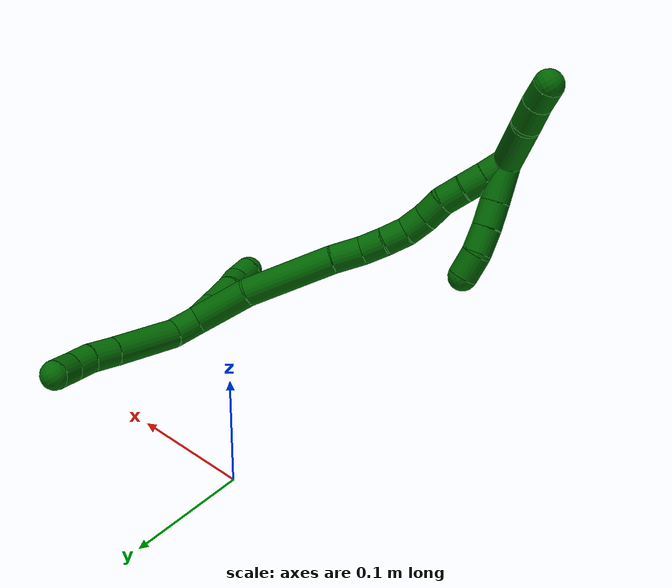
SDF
<sdf version="1.7">
 <world name="default">
  <model name="6">
   <static>0</static>
   <link name="6">
    <collision name="collision-cylinder-e_1_2_8">
     <pose>0.000901 0.008517 -0.009647 -2.41834 0.06988 -0.184291</pose>
     <geometry><cylinder><radius>0.0125</radius><length>0.025799</length></cylinder></geometry>
     <surface>
      <friction><ode><mu>1.16</mu><mu2>1.16</mu2><slip1>0</slip1><slip2>0</slip2></ode></friction>
      <contact><ode><kp>1e+06</kp><kd>1</kd><max_vel>0</max_vel><min_depth>0.001</min_depth></ode></contact>
     </surface>
    </collision>
    <visual name="visual-cylinder-e_1_2_8">
     <pose>0.000901 0.008517 -0.009647 -2.41834 0.06988 -0.184291</pose>
     <geometry><cylinder><radius>0.0125</radius><length>0.025799</length></cylinder></geometry>
     <material><ambient>0 0.392157 0.003922 1</ambient></material>
    </visual>
    <collision name="collision-cylinder-e_2_8_9">
     <pose>0.009356 0.039207 -0.0373 -2.25285 0.258569 -0.533111</pose>
     <geometry><cylinder><radius>0.0125</radius><length>0.059093</length></cylinder></geometry>
     <surface>
      <friction><ode><mu>1.16</mu><mu2>1.16</mu2><slip1>0</slip1><slip2>0</slip2></ode></friction>
      <contact><ode><kp>1e+06</kp><kd>1</kd><max_vel>0</max_vel><min_depth>0.001</min_depth></ode></contact>
     </surface>
    </collision>
    <visual name="visual-cylinder-e_2_8_9">
     <pose>0.009356 0.039207 -0.0373 -2.25285 0.258569 -0.533111</pose>
     <geometry><cylinder><radius>0.0125</radius><length>0.059093</length></cylinder></geometry>
     <material><ambient>0 0.392157 0.003922 1</ambient></material>
    </visual>
    <collision name="collision-cylinder-e_3_9_10">
     <pose>0.020193 0.070194 -0.062357 -2.24553 0.282952 -0.576186</pose>
     <geometry><cylinder><radius>0.0125</radius><length>0.023507</length></cylinder></geometry>
     <surface>
      <friction><ode><mu>1.16</mu><mu2>1.16</mu2><slip1>0</slip1><slip2>0</slip2></ode></friction>
      <contact><ode><kp>1e+06</kp><kd>1</kd><max_vel>0</max_vel><min_depth>0.001</min_depth></ode></contact>
     </surface>
    </collision>
    <visual name="visual-cylinder-e_3_9_10">
     <pose>0.020193 0.070194 -0.062357 -2.24553 0.282952 -0.576186</pose>
     <geometry><cylinder><radius>0.0125</radius><length>0.023507</length></cylinder></geometry>
     <material><ambient>0 0.392157 0.003922 1</ambient></material>
    </visual>
    <collision name="collision-cylinder-e_4_10_11">
     <pose>0.024627 0.087351 -0.074887 -2.15188 0.114982 -0.212504</pose>
     <geometry><cylinder><radius>0.0125</radius><length>0.020098</length></cylinder></geometry>
     <surface>
      <friction><ode><mu>1.16</mu><mu2>1.16</mu2><slip1>0</slip1><slip2>0</slip2></ode></friction>
      <contact><ode><kp>1e+06</kp><kd>1</kd><max_vel>0</max_vel><min_depth>0.001</min_depth></ode></contact>
     </surface>
    </collision>
    <visual name="visual-cylinder-e_4_10_11">
     <pose>0.024627 0.087351 -0.074887 -2.15188 0.114982 -0.212504</pose>
     <geometry><cylinder><radius>0.0125</radius><length>0.020098</length></cylinder></geometry>
     <material><ambient>0 0.392157 0.003922 1</ambient></material>
    </visual>
    <collision name="collision-cylinder-e_5_11_6">
     <pose>0.027122 0.10595 -0.083304 -1.84977 0.125163 -0.165885</pose>
     <geometry><cylinder><radius>0.0125</radius><length>0.021503</length></cylinder></geometry>
     <surface>
      <friction><ode><mu>1.16</mu><mu2>1.16</mu2><slip1>0</slip1><slip2>0</slip2></ode></friction>
      <contact><ode><kp>1e+06</kp><kd>1</kd><max_vel>0</max_vel><min_depth>0.001</min_depth></ode></contact>
     </surface>
    </collision>
    <visual name="visual-cylinder-e_5_11_6">
     <pose>0.027122 0.10595 -0.083304 -1.84977 0.125163 -0.165885</pose>
     <geometry><cylinder><radius>0.0125</radius><length>0.021503</length></cylinder></geometry>
     <material><ambient>0 0.392157 0.003922 1</ambient></material>
    </visual>
    <collision name="collision-cylinder-e_1_2_12">
     <pose>0.00107 -0.011231 0.00469 1.17523 0.087654 0.058408</pose>
     <geometry><cylinder><radius>0.0125</radius><length>0.024436</length></cylinder></geometry>
     <surface>
      <friction><ode><mu>1.16</mu><mu2>1.16</mu2><slip1>0</slip1><slip2>0</slip2></ode></friction>
      <contact><ode><kp>1e+06</kp><kd>1</kd><max_vel>0</max_vel><min_depth>0.001</min_depth></ode></contact>
     </surface>
    </collision>
    <visual name="visual-cylinder-e_1_2_12">
     <pose>0.00107 -0.011231 0.00469 1.17523 0.087654 0.058408</pose>
     <geometry><cylinder><radius>0.0125</radius><length>0.024436</length></cylinder></geometry>
     <material><ambient>0 0.392157 0.003922 1</ambient></material>
    </visual>
    <collision name="collision-cylinder-e_2_12_13">
     <pose>0.003779 -0.038379 0.015933 1.18022 0.095004 0.063652</pose>
     <geometry><cylinder><radius>0.0125</radius><length>0.034582</length></cylinder></geometry>
     <surface>
      <friction><ode><mu>1.16</mu><mu2>1.16</mu2><slip1>0</slip1><slip2>0</slip2></ode></friction>
      <contact><ode><kp>1e+06</kp><kd>1</kd><max_vel>0</max_vel><min_depth>0.001</min_depth></ode></contact>
     </surface>
    </collision>
    <visual name="visual-cylinder-e_2_12_13">
     <pose>0.003779 -0.038379 0.015933 1.18022 0.095004 0.063652</pose>
     <geometry><cylinder><radius>0.0125</radius><length>0.034582</length></cylinder></geometry>
     <material><ambient>0 0.392157 0.003922 1</ambient></material>
    </visual>
    <collision name="collision-cylinder-e_3_13_14">
     <pose>0.006563 -0.064226 0.023962 1.42327 0.113371 0.097796</pose>
     <geometry><cylinder><radius>0.0125</radius><length>0.020208</length></cylinder></geometry>
     <surface>
      <friction><ode><mu>1.16</mu><mu2>1.16</mu2><slip1>0</slip1><slip2>0</slip2></ode></friction>
      <contact><ode><kp>1e+06</kp><kd>1</kd><max_vel>0</max_vel><min_depth>0.001</min_depth></ode></contact>
     </surface>
    </collision>
    <visual name="visual-cylinder-e_3_13_14">
     <pose>0.006563 -0.064226 0.023962 1.42327 0.113371 0.097796</pose>
     <geometry><cylinder><radius>0.0125</radius><length>0.020208</length></cylinder></geometry>
     <material><ambient>0 0.392157 0.003922 1</ambient></material>
    </visual>
    <collision name="collision-cylinder-e_4_14_5">
     <pose>0.00837 -0.083293 0.030333 1.07895 0.063977 0.038313</pose>
     <geometry><cylinder><radius>0.0125</radius><length>0.020774</length></cylinder></geometry>
     <surface>
      <friction><ode><mu>1.16</mu><mu2>1.16</mu2><slip1>0</slip1><slip2>0</slip2></ode></friction>
      <contact><ode><kp>1e+06</kp><kd>1</kd><max_vel>0</max_vel><min_depth>0.001</min_depth></ode></contact>
     </surface>
    </collision>
    <visual name="visual-cylinder-e_4_14_5">
     <pose>0.00837 -0.083293 0.030333 1.07895 0.063977 0.038313</pose>
     <geometry><cylinder><radius>0.0125</radius><length>0.020774</length></cylinder></geometry>
     <material><ambient>0 0.392157 0.003922 1</ambient></material>
    </visual>
    <collision name="collision-cylinder-e_1_2_15">
     <pose>-0.000337 0.000831 0.02624 -0.031644 -0.01283 0.000203</pose>
     <geometry><cylinder><radius>0.0125</radius><length>0.05251</length></cylinder></geometry>
     <surface>
      <friction><ode><mu>1.16</mu><mu2>1.16</mu2><slip1>0</slip1><slip2>0</slip2></ode></friction>
      <contact><ode><kp>1e+06</kp><kd>1</kd><max_vel>0</max_vel><min_depth>0.001</min_depth></ode></contact>
     </surface>
    </collision>
    <visual name="visual-cylinder-e_1_2_15">
     <pose>-0.000337 0.000831 0.02624 -0.031644 -0.01283 0.000203</pose>
     <geometry><cylinder><radius>0.0125</radius><length>0.05251</length></cylinder></geometry>
     <material><ambient>0 0.392157 0.003922 1</ambient></material>
    </visual>
    <collision name="collision-cylinder-e_2_15_16">
     <pose>-0.006866 -0.001015 0.09162 0.068255 -0.156536 -0.005355</pose>
     <geometry><cylinder><radius>0.0125</radius><length>0.079435</length></cylinder></geometry>
     <surface>
      <friction><ode><mu>1.16</mu><mu2>1.16</mu2><slip1>0</slip1><slip2>0</slip2></ode></friction>
      <contact><ode><kp>1e+06</kp><kd>1</kd><max_vel>0</max_vel><min_depth>0.001</min_depth></ode></contact>
     </surface>
    </collision>
    <visual name="visual-cylinder-e_2_15_16">
     <pose>-0.006866 -0.001015 0.09162 0.068255 -0.156536 -0.005355</pose>
     <geometry><cylinder><radius>0.0125</radius><length>0.079435</length></cylinder></geometry>
     <material><ambient>0 0.392157 0.003922 1</ambient></material>
    </visual>
    <collision name="collision-cylinder-e_3_16_17">
     <pose>-0.016212 -0.005289 0.143577 0.124094 -0.239537 -0.014953</pose>
     <geometry><cylinder><radius>0.0125</radius><length>0.026591</length></cylinder></geometry>
     <surface>
      <friction><ode><mu>1.16</mu><mu2>1.16</mu2><slip1>0</slip1><slip2>0</slip2></ode></friction>
      <contact><ode><kp>1e+06</kp><kd>1</kd><max_vel>0</max_vel><min_depth>0.001</min_depth></ode></contact>
     </surface>
    </collision>
    <visual name="visual-cylinder-e_3_16_17">
     <pose>-0.016212 -0.005289 0.143577 0.124094 -0.239537 -0.014953</pose>
     <geometry><cylinder><radius>0.0125</radius><length>0.026591</length></cylinder></geometry>
     <material><ambient>0 0.392157 0.003922 1</ambient></material>
    </visual>
    <collision name="collision-cylinder-e_4_17_18">
     <pose>-0.020733 -0.006804 0.166471 -0.008273 -0.134774 0.000558</pose>
     <geometry><cylinder><radius>0.0125</radius><length>0.020341</length></cylinder></geometry>
     <surface>
      <friction><ode><mu>1.16</mu><mu2>1.16</mu2><slip1>0</slip1><slip2>0</slip2></ode></friction>
      <contact><ode><kp>1e+06</kp><kd>1</kd><max_vel>0</max_vel><min_depth>0.001</min_depth></ode></contact>
     </surface>
    </collision>
    <visual name="visual-cylinder-e_4_17_18">
     <pose>-0.020733 -0.006804 0.166471 -0.008273 -0.134774 0.000558</pose>
     <geometry><cylinder><radius>0.0125</radius><length>0.020341</length></cylinder></geometry>
     <material><ambient>0 0.392157 0.003922 1</ambient></material>
    </visual>
    <collision name="collision-cylinder-e_5_18_19">
     <pose>-0.023049 -0.007902 0.186471 0.118453 -0.094799 -0.005625</pose>
     <geometry><cylinder><radius>0.0125</radius><length>0.020075</length></cylinder></geometry>
     <surface>
      <friction><ode><mu>1.16</mu><mu2>1.16</mu2><slip1>0</slip1><slip2>0</slip2></ode></friction>
      <contact><ode><kp>1e+06</kp><kd>1</kd><max_vel>0</max_vel><min_depth>0.001</min_depth></ode></contact>
     </surface>
    </collision>
    <visual name="visual-cylinder-e_5_18_19">
     <pose>-0.023049 -0.007902 0.186471 0.118453 -0.094799 -0.005625</pose>
     <geometry><cylinder><radius>0.0125</radius><length>0.020075</length></cylinder></geometry>
     <material><ambient>0 0.392157 0.003922 1</ambient></material>
    </visual>
    <collision name="collision-cylinder-e_6_19_20">
     <pose>-0.022856 -0.009392 0.206332 0.031129 0.114492 0.001784</pose>
     <geometry><cylinder><radius>0.0125</radius><length>0.020017</length></cylinder></geometry>
     <surface>
      <friction><ode><mu>1.16</mu><mu2>1.16</mu2><slip1>0</slip1><slip2>0</slip2></ode></friction>
      <contact><ode><kp>1e+06</kp><kd>1</kd><max_vel>0</max_vel><min_depth>0.001</min_depth></ode></contact>
     </surface>
    </collision>
    <visual name="visual-cylinder-e_6_19_20">
     <pose>-0.022856 -0.009392 0.206332 0.031129 0.114492 0.001784</pose>
     <geometry><cylinder><radius>0.0125</radius><length>0.020017</length></cylinder></geometry>
     <material><ambient>0 0.392157 0.003922 1</ambient></material>
    </visual>
    <collision name="collision-cylinder-e_7_20_21">
     <pose>-0.019198 -0.008586 0.226076 -0.113253 0.24953 -0.014219</pose>
     <geometry><cylinder><radius>0.0125</radius><length>0.02037</length></cylinder></geometry>
     <surface>
      <friction><ode><mu>1.16</mu><mu2>1.16</mu2><slip1>0</slip1><slip2>0</slip2></ode></friction>
      <contact><ode><kp>1e+06</kp><kd>1</kd><max_vel>0</max_vel><min_depth>0.001</min_depth></ode></contact>
     </surface>
    </collision>
    <visual name="visual-cylinder-e_7_20_21">
     <pose>-0.019198 -0.008586 0.226076 -0.113253 0.24953 -0.014219</pose>
     <geometry><cylinder><radius>0.0125</radius><length>0.02037</length></cylinder></geometry>
     <material><ambient>0 0.392157 0.003922 1</ambient></material>
    </visual>
    <collision name="collision-cylinder-e_8_21_22">
     <pose>-0.016526 -0.007111 0.246037 -0.03541 0.015367 -0.000272</pose>
     <geometry><cylinder><radius>0.0125</radius><length>0.020323</length></cylinder></geometry>
     <surface>
      <friction><ode><mu>1.16</mu><mu2>1.16</mu2><slip1>0</slip1><slip2>0</slip2></ode></friction>
      <contact><ode><kp>1e+06</kp><kd>1</kd><max_vel>0</max_vel><min_depth>0.001</min_depth></ode></contact>
     </surface>
    </collision>
    <visual name="visual-cylinder-e_8_21_22">
     <pose>-0.016526 -0.007111 0.246037 -0.03541 0.015367 -0.000272</pose>
     <geometry><cylinder><radius>0.0125</radius><length>0.020323</length></cylinder></geometry>
     <material><ambient>0 0.392157 0.003922 1</ambient></material>
    </visual>
    <collision name="collision-cylinder-e_9_22_23">
     <pose>-0.016361 -0.007405 0.266295 0.064567 0.000933 3e-05</pose>
     <geometry><cylinder><radius>0.0125</radius><length>0.02025</length></cylinder></geometry>
     <surface>
      <friction><ode><mu>1.16</mu><mu2>1.16</mu2><slip1>0</slip1><slip2>0</slip2></ode></friction>
      <contact><ode><kp>1e+06</kp><kd>1</kd><max_vel>0</max_vel><min_depth>0.001</min_depth></ode></contact>
     </surface>
    </collision>
    <visual name="visual-cylinder-e_9_22_23">
     <pose>-0.016361 -0.007405 0.266295 0.064567 0.000933 3e-05</pose>
     <geometry><cylinder><radius>0.0125</radius><length>0.02025</length></cylinder></geometry>
     <material><ambient>0 0.392157 0.003922 1</ambient></material>
    </visual>
    <collision name="collision-cylinder-e_10_23_1">
     <pose>-0.016058 -0.008829 0.286409 0.076912 0.029179 0.001123</pose>
     <geometry><cylinder><radius>0.0125</radius><length>0.020088</length></cylinder></geometry>
     <surface>
      <friction><ode><mu>1.16</mu><mu2>1.16</mu2><slip1>0</slip1><slip2>0</slip2></ode></friction>
      <contact><ode><kp>1e+06</kp><kd>1</kd><max_vel>0</max_vel><min_depth>0.001</min_depth></ode></contact>
     </surface>
    </collision>
    <visual name="visual-cylinder-e_10_23_1">
     <pose>-0.016058 -0.008829 0.286409 0.076912 0.029179 0.001123</pose>
     <geometry><cylinder><radius>0.0125</radius><length>0.020088</length></cylinder></geometry>
     <material><ambient>0 0.392157 0.003922 1</ambient></material>
    </visual>
    <collision name="collision-cylinder-e_1_1_24">
     <pose>-0.004721 0.010727 0.312357 -0.905861 0.404048 -0.198703</pose>
     <geometry><cylinder><radius>0.0125</radius><length>0.056185</length></cylinder></geometry>
     <surface>
      <friction><ode><mu>1.16</mu><mu2>1.16</mu2><slip1>0</slip1><slip2>0</slip2></ode></friction>
      <contact><ode><kp>1e+06</kp><kd>1</kd><max_vel>0</max_vel><min_depth>0.001</min_depth></ode></contact>
     </surface>
    </collision>
    <visual name="visual-cylinder-e_1_1_24">
     <pose>-0.004721 0.010727 0.312357 -0.905861 0.404048 -0.198703</pose>
     <geometry><cylinder><radius>0.0125</radius><length>0.056185</length></cylinder></geometry>
     <material><ambient>0 0.392157 0.003922 1</ambient></material>
    </visual>
    <collision name="collision-cylinder-e_2_24_25">
     <pose>0.012025 0.037367 0.336586 -0.65068 0.50063 -0.172068</pose>
     <geometry><cylinder><radius>0.0125</radius><length>0.023758</length></cylinder></geometry>
     <surface>
      <friction><ode><mu>1.16</mu><mu2>1.16</mu2><slip1>0</slip1><slip2>0</slip2></ode></friction>
      <contact><ode><kp>1e+06</kp><kd>1</kd><max_vel>0</max_vel><min_depth>0.001</min_depth></ode></contact>
     </surface>
    </collision>
    <visual name="visual-cylinder-e_2_24_25">
     <pose>0.012025 0.037367 0.336586 -0.65068 0.50063 -0.172068</pose>
     <geometry><cylinder><radius>0.0125</radius><length>0.023758</length></cylinder></geometry>
     <material><ambient>0 0.392157 0.003922 1</ambient></material>
    </visual>
    <collision name="collision-cylinder-e_3_25_4">
     <pose>0.021831 0.049397 0.352022 -0.674997 0.421574 -0.14989</pose>
     <geometry><cylinder><radius>0.0125</radius><length>0.020057</length></cylinder></geometry>
     <surface>
      <friction><ode><mu>1.16</mu><mu2>1.16</mu2><slip1>0</slip1><slip2>0</slip2></ode></friction>
      <contact><ode><kp>1e+06</kp><kd>1</kd><max_vel>0</max_vel><min_depth>0.001</min_depth></ode></contact>
     </surface>
    </collision>
    <visual name="visual-cylinder-e_3_25_4">
     <pose>0.021831 0.049397 0.352022 -0.674997 0.421574 -0.14989</pose>
     <geometry><cylinder><radius>0.0125</radius><length>0.020057</length></cylinder></geometry>
     <material><ambient>0 0.392157 0.003922 1</ambient></material>
    </visual>
    <collision name="collision-cylinder-e_1_1_26">
     <pose>-0.027079 -0.005291 0.284719 -2.78867 -0.736864 2.27619</pose>
     <geometry><cylinder><radius>0.0125</radius><length>0.033673</length></cylinder></geometry>
     <surface>
      <friction><ode><mu>1.16</mu><mu2>1.16</mu2><slip1>0</slip1><slip2>0</slip2></ode></friction>
      <contact><ode><kp>1e+06</kp><kd>1</kd><max_vel>0</max_vel><min_depth>0.001</min_depth></ode></contact>
     </surface>
    </collision>
    <visual name="visual-cylinder-e_1_1_26">
     <pose>-0.027079 -0.005291 0.284719 -2.78867 -0.736864 2.27619</pose>
     <geometry><cylinder><radius>0.0125</radius><length>0.033673</length></cylinder></geometry>
     <material><ambient>0 0.392157 0.003922 1</ambient></material>
    </visual>
    <collision name="collision-cylinder-e_2_26_27">
     <pose>-0.045529 0.00213 0.265284 -2.75915 -0.707991 2.17653</pose>
     <geometry><cylinder><radius>0.0125</radius><length>0.021948</length></cylinder></geometry>
     <surface>
      <friction><ode><mu>1.16</mu><mu2>1.16</mu2><slip1>0</slip1><slip2>0</slip2></ode></friction>
      <contact><ode><kp>1e+06</kp><kd>1</kd><max_vel>0</max_vel><min_depth>0.001</min_depth></ode></contact>
     </surface>
    </collision>
    <visual name="visual-cylinder-e_2_26_27">
     <pose>-0.045529 0.00213 0.265284 -2.75915 -0.707991 2.17653</pose>
     <geometry><cylinder><radius>0.0125</radius><length>0.021948</length></cylinder></geometry>
     <material><ambient>0 0.392157 0.003922 1</ambient></material>
    </visual>
    <collision name="collision-cylinder-e_3_27_28">
     <pose>-0.059376 0.008207 0.249145 -2.80231 -0.645336 2.19472</pose>
     <geometry><cylinder><radius>0.0125</radius><length>0.022313</length></cylinder></geometry>
     <surface>
      <friction><ode><mu>1.16</mu><mu2>1.16</mu2><slip1>0</slip1><slip2>0</slip2></ode></friction>
      <contact><ode><kp>1e+06</kp><kd>1</kd><max_vel>0</max_vel><min_depth>0.001</min_depth></ode></contact>
     </surface>
    </collision>
    <visual name="visual-cylinder-e_3_27_28">
     <pose>-0.059376 0.008207 0.249145 -2.80231 -0.645336 2.19472</pose>
     <geometry><cylinder><radius>0.0125</radius><length>0.022313</length></cylinder></geometry>
     <material><ambient>0 0.392157 0.003922 1</ambient></material>
    </visual>
    <collision name="collision-cylinder-e_4_28_3">
     <pose>-0.071565 0.01143 0.231167 -3.1148 -0.519664 3.04088</pose>
     <geometry><cylinder><radius>0.0125</radius><length>0.022066</length></cylinder></geometry>
     <surface>
      <friction><ode><mu>1.16</mu><mu2>1.16</mu2><slip1>0</slip1><slip2>0</slip2></ode></friction>
      <contact><ode><kp>1e+06</kp><kd>1</kd><max_vel>0</max_vel><min_depth>0.001</min_depth></ode></contact>
     </surface>
    </collision>
    <visual name="visual-cylinder-e_4_28_3">
     <pose>-0.071565 0.01143 0.231167 -3.1148 -0.519664 3.04088</pose>
     <geometry><cylinder><radius>0.0125</radius><length>0.022066</length></cylinder></geometry>
     <material><ambient>0 0.392157 0.003922 1</ambient></material>
    </visual>
    <collision name="collision-sphere-3">
     <pose>-0.077044 0.011687 0.221594 0 -0 0</pose>
     <geometry><sphere><radius>0.0125</radius></sphere></geometry>
     <surface>
      <friction><ode><mu>1.16</mu><mu2>1.16</mu2><slip1>0</slip1><slip2>0</slip2></ode></friction>
      <contact><ode><kp>1e+06</kp><kd>1</kd><max_vel>0</max_vel><min_depth>0.001</min_depth></ode></contact>
     </surface>
    </collision>
    <visual name="visual-sphere-3">
     <pose>-0.077044 0.011687 0.221594 0 -0 0</pose>
     <geometry><sphere><radius>0.0125</radius></sphere></geometry>
     <material><ambient>0 0.392157 0.003922 1</ambient></material>
    </visual>
    <collision name="collision-sphere-28">
     <pose>-0.066086 0.011174 0.24074 0 -0 0</pose>
     <geometry><sphere><radius>0.0125</radius></sphere></geometry>
     <surface>
      <friction><ode><mu>1.16</mu><mu2>1.16</mu2><slip1>0</slip1><slip2>0</slip2></ode></friction>
      <contact><ode><kp>1e+06</kp><kd>1</kd><max_vel>0</max_vel><min_depth>0.001</min_depth></ode></contact>
     </surface>
    </collision>
    <visual name="visual-sphere-28">
     <pose>-0.066086 0.011174 0.24074 0 -0 0</pose>
     <geometry><sphere><radius>0.0125</radius></sphere></geometry>
     <material><ambient>0 0.392157 0.003922 1</ambient></material>
    </visual>
    <collision name="collision-sphere-27">
     <pose>-0.052665 0.005241 0.25755 0 -0 0</pose>
     <geometry><sphere><radius>0.0125</radius></sphere></geometry>
     <surface>
      <friction><ode><mu>1.16</mu><mu2>1.16</mu2><slip1>0</slip1><slip2>0</slip2></ode></friction>
      <contact><ode><kp>1e+06</kp><kd>1</kd><max_vel>0</max_vel><min_depth>0.001</min_depth></ode></contact>
     </surface>
    </collision>
    <visual name="visual-sphere-27">
     <pose>-0.052665 0.005241 0.25755 0 -0 0</pose>
     <geometry><sphere><radius>0.0125</radius></sphere></geometry>
     <material><ambient>0 0.392157 0.003922 1</ambient></material>
    </visual>
    <collision name="collision-sphere-26">
     <pose>-0.038392 -0.000981 0.273019 0 -0 0</pose>
     <geometry><sphere><radius>0.0125</radius></sphere></geometry>
     <surface>
      <friction><ode><mu>1.16</mu><mu2>1.16</mu2><slip1>0</slip1><slip2>0</slip2></ode></friction>
      <contact><ode><kp>1e+06</kp><kd>1</kd><max_vel>0</max_vel><min_depth>0.001</min_depth></ode></contact>
     </surface>
    </collision>
    <visual name="visual-sphere-26">
     <pose>-0.038392 -0.000981 0.273019 0 -0 0</pose>
     <geometry><sphere><radius>0.0125</radius></sphere></geometry>
     <material><ambient>0 0.392157 0.003922 1</ambient></material>
    </visual>
    <collision name="collision-sphere-4">
     <pose>0.025934 0.055115 0.359166 0 -0 0</pose>
     <geometry><sphere><radius>0.0125</radius></sphere></geometry>
     <surface>
      <friction><ode><mu>1.16</mu><mu2>1.16</mu2><slip1>0</slip1><slip2>0</slip2></ode></friction>
      <contact><ode><kp>1e+06</kp><kd>1</kd><max_vel>0</max_vel><min_depth>0.001</min_depth></ode></contact>
     </surface>
    </collision>
    <visual name="visual-sphere-4">
     <pose>0.025934 0.055115 0.359166 0 -0 0</pose>
     <geometry><sphere><radius>0.0125</radius></sphere></geometry>
     <material><ambient>0 0.392157 0.003922 1</ambient></material>
    </visual>
    <collision name="collision-sphere-25">
     <pose>0.017727 0.043679 0.344878 0 -0 0</pose>
     <geometry><sphere><radius>0.0125</radius></sphere></geometry>
     <surface>
      <friction><ode><mu>1.16</mu><mu2>1.16</mu2><slip1>0</slip1><slip2>0</slip2></ode></friction>
      <contact><ode><kp>1e+06</kp><kd>1</kd><max_vel>0</max_vel><min_depth>0.001</min_depth></ode></contact>
     </surface>
    </collision>
    <visual name="visual-sphere-25">
     <pose>0.017727 0.043679 0.344878 0 -0 0</pose>
     <geometry><sphere><radius>0.0125</radius></sphere></geometry>
     <material><ambient>0 0.392157 0.003922 1</ambient></material>
    </visual>
    <collision name="collision-sphere-24">
     <pose>0.006324 0.031054 0.328294 0 -0 0</pose>
     <geometry><sphere><radius>0.0125</radius></sphere></geometry>
     <surface>
      <friction><ode><mu>1.16</mu><mu2>1.16</mu2><slip1>0</slip1><slip2>0</slip2></ode></friction>
      <contact><ode><kp>1e+06</kp><kd>1</kd><max_vel>0</max_vel><min_depth>0.001</min_depth></ode></contact>
     </surface>
    </collision>
    <visual name="visual-sphere-24">
     <pose>0.006324 0.031054 0.328294 0 -0 0</pose>
     <geometry><sphere><radius>0.0125</radius></sphere></geometry>
     <material><ambient>0 0.392157 0.003922 1</ambient></material>
    </visual>
    <collision name="collision-sphere-1">
     <pose>-0.015765 -0.009601 0.296419 0 -0 0</pose>
     <geometry><sphere><radius>0.0125</radius></sphere></geometry>
     <surface>
      <friction><ode><mu>1.16</mu><mu2>1.16</mu2><slip1>0</slip1><slip2>0</slip2></ode></friction>
      <contact><ode><kp>1e+06</kp><kd>1</kd><max_vel>0</max_vel><min_depth>0.001</min_depth></ode></contact>
     </surface>
    </collision>
    <visual name="visual-sphere-1">
     <pose>-0.015765 -0.009601 0.296419 0 -0 0</pose>
     <geometry><sphere><radius>0.0125</radius></sphere></geometry>
     <material><ambient>0 0.392157 0.003922 1</ambient></material>
    </visual>
    <collision name="collision-sphere-23">
     <pose>-0.016351 -0.008058 0.276399 0 -0 0</pose>
     <geometry><sphere><radius>0.0125</radius></sphere></geometry>
     <surface>
      <friction><ode><mu>1.16</mu><mu2>1.16</mu2><slip1>0</slip1><slip2>0</slip2></ode></friction>
      <contact><ode><kp>1e+06</kp><kd>1</kd><max_vel>0</max_vel><min_depth>0.001</min_depth></ode></contact>
     </surface>
    </collision>
    <visual name="visual-sphere-23">
     <pose>-0.016351 -0.008058 0.276399 0 -0 0</pose>
     <geometry><sphere><radius>0.0125</radius></sphere></geometry>
     <material><ambient>0 0.392157 0.003922 1</ambient></material>
    </visual>
    <collision name="collision-sphere-22">
     <pose>-0.01637 -0.006751 0.256191 0 -0 0</pose>
     <geometry><sphere><radius>0.0125</radius></sphere></geometry>
     <surface>
      <friction><ode><mu>1.16</mu><mu2>1.16</mu2><slip1>0</slip1><slip2>0</slip2></ode></friction>
      <contact><ode><kp>1e+06</kp><kd>1</kd><max_vel>0</max_vel><min_depth>0.001</min_depth></ode></contact>
     </surface>
    </collision>
    <visual name="visual-sphere-22">
     <pose>-0.01637 -0.006751 0.256191 0 -0 0</pose>
     <geometry><sphere><radius>0.0125</radius></sphere></geometry>
     <material><ambient>0 0.392157 0.003922 1</ambient></material>
    </visual>
    <collision name="collision-sphere-21">
     <pose>-0.016682 -0.007471 0.235883 0 -0 0</pose>
     <geometry><sphere><radius>0.0125</radius></sphere></geometry>
     <surface>
      <friction><ode><mu>1.16</mu><mu2>1.16</mu2><slip1>0</slip1><slip2>0</slip2></ode></friction>
      <contact><ode><kp>1e+06</kp><kd>1</kd><max_vel>0</max_vel><min_depth>0.001</min_depth></ode></contact>
     </surface>
    </collision>
    <visual name="visual-sphere-21">
     <pose>-0.016682 -0.007471 0.235883 0 -0 0</pose>
     <geometry><sphere><radius>0.0125</radius></sphere></geometry>
     <material><ambient>0 0.392157 0.003922 1</ambient></material>
    </visual>
    <collision name="collision-sphere-6">
     <pose>0.028464 0.116205 -0.086242 0 -0 0</pose>
     <geometry><sphere><radius>0.0125</radius></sphere></geometry>
     <surface>
      <friction><ode><mu>1.16</mu><mu2>1.16</mu2><slip1>0</slip1><slip2>0</slip2></ode></friction>
      <contact><ode><kp>1e+06</kp><kd>1</kd><max_vel>0</max_vel><min_depth>0.001</min_depth></ode></contact>
     </surface>
    </collision>
    <visual name="visual-sphere-6">
     <pose>0.028464 0.116205 -0.086242 0 -0 0</pose>
     <geometry><sphere><radius>0.0125</radius></sphere></geometry>
     <material><ambient>0 0.392157 0.003922 1</ambient></material>
    </visual>
    <collision name="collision-sphere-11">
     <pose>0.02578 0.095695 -0.080367 0 -0 0</pose>
     <geometry><sphere><radius>0.0125</radius></sphere></geometry>
     <surface>
      <friction><ode><mu>1.16</mu><mu2>1.16</mu2><slip1>0</slip1><slip2>0</slip2></ode></friction>
      <contact><ode><kp>1e+06</kp><kd>1</kd><max_vel>0</max_vel><min_depth>0.001</min_depth></ode></contact>
     </surface>
    </collision>
    <visual name="visual-sphere-11">
     <pose>0.02578 0.095695 -0.080367 0 -0 0</pose>
     <geometry><sphere><radius>0.0125</radius></sphere></geometry>
     <material><ambient>0 0.392157 0.003922 1</ambient></material>
    </visual>
    <collision name="collision-sphere-10">
     <pose>0.023474 0.079007 -0.069407 0 -0 0</pose>
     <geometry><sphere><radius>0.0125</radius></sphere></geometry>
     <surface>
      <friction><ode><mu>1.16</mu><mu2>1.16</mu2><slip1>0</slip1><slip2>0</slip2></ode></friction>
      <contact><ode><kp>1e+06</kp><kd>1</kd><max_vel>0</max_vel><min_depth>0.001</min_depth></ode></contact>
     </surface>
    </collision>
    <visual name="visual-sphere-10">
     <pose>0.023474 0.079007 -0.069407 0 -0 0</pose>
     <geometry><sphere><radius>0.0125</radius></sphere></geometry>
     <material><ambient>0 0.392157 0.003922 1</ambient></material>
    </visual>
    <collision name="collision-sphere-9">
     <pose>0.016911 0.061381 -0.055306 0 -0 0</pose>
     <geometry><sphere><radius>0.0125</radius></sphere></geometry>
     <surface>
      <friction><ode><mu>1.16</mu><mu2>1.16</mu2><slip1>0</slip1><slip2>0</slip2></ode></friction>
      <contact><ode><kp>1e+06</kp><kd>1</kd><max_vel>0</max_vel><min_depth>0.001</min_depth></ode></contact>
     </surface>
    </collision>
    <visual name="visual-sphere-9">
     <pose>0.016911 0.061381 -0.055306 0 -0 0</pose>
     <geometry><sphere><radius>0.0125</radius></sphere></geometry>
     <material><ambient>0 0.392157 0.003922 1</ambient></material>
    </visual>
    <collision name="collision-sphere-2">
     <geometry><sphere><radius>0.0125</radius></sphere></geometry>
     <surface>
      <friction><ode><mu>1.16</mu><mu2>1.16</mu2><slip1>0</slip1><slip2>0</slip2></ode></friction>
      <contact><ode><kp>1e+06</kp><kd>1</kd><max_vel>0</max_vel><min_depth>0.001</min_depth></ode></contact>
     </surface>
    </collision>
    <visual name="visual-sphere-2">
     <geometry><sphere><radius>0.0125</radius></sphere></geometry>
     <material><ambient>0 0.392157 0.003922 1</ambient></material>
    </visual>
    <collision name="collision-sphere-19">
     <pose>-0.024 -0.009083 0.196394 0 -0 0</pose>
     <geometry><sphere><radius>0.0125</radius></sphere></geometry>
     <surface>
      <friction><ode><mu>1.16</mu><mu2>1.16</mu2><slip1>0</slip1><slip2>0</slip2></ode></friction>
      <contact><ode><kp>1e+06</kp><kd>1</kd><max_vel>0</max_vel><min_depth>0.001</min_depth></ode></contact>
     </surface>
    </collision>
    <visual name="visual-sphere-19">
     <pose>-0.024 -0.009083 0.196394 0 -0 0</pose>
     <geometry><sphere><radius>0.0125</radius></sphere></geometry>
     <material><ambient>0 0.392157 0.003922 1</ambient></material>
    </visual>
    <collision name="collision-sphere-8">
     <pose>0.001801 0.017033 -0.019293 0 -0 0</pose>
     <geometry><sphere><radius>0.0125</radius></sphere></geometry>
     <surface>
      <friction><ode><mu>1.16</mu><mu2>1.16</mu2><slip1>0</slip1><slip2>0</slip2></ode></friction>
      <contact><ode><kp>1e+06</kp><kd>1</kd><max_vel>0</max_vel><min_depth>0.001</min_depth></ode></contact>
     </surface>
    </collision>
    <visual name="visual-sphere-8">
     <pose>0.001801 0.017033 -0.019293 0 -0 0</pose>
     <geometry><sphere><radius>0.0125</radius></sphere></geometry>
     <material><ambient>0 0.392157 0.003922 1</ambient></material>
    </visual>
    <collision name="collision-sphere-12">
     <pose>0.002139 -0.022463 0.00938 0 -0 0</pose>
     <geometry><sphere><radius>0.0125</radius></sphere></geometry>
     <surface>
      <friction><ode><mu>1.16</mu><mu2>1.16</mu2><slip1>0</slip1><slip2>0</slip2></ode></friction>
      <contact><ode><kp>1e+06</kp><kd>1</kd><max_vel>0</max_vel><min_depth>0.001</min_depth></ode></contact>
     </surface>
    </collision>
    <visual name="visual-sphere-12">
     <pose>0.002139 -0.022463 0.00938 0 -0 0</pose>
     <geometry><sphere><radius>0.0125</radius></sphere></geometry>
     <material><ambient>0 0.392157 0.003922 1</ambient></material>
    </visual>
    <collision name="collision-sphere-13">
     <pose>0.00542 -0.054296 0.022487 0 -0 0</pose>
     <geometry><sphere><radius>0.0125</radius></sphere></geometry>
     <surface>
      <friction><ode><mu>1.16</mu><mu2>1.16</mu2><slip1>0</slip1><slip2>0</slip2></ode></friction>
      <contact><ode><kp>1e+06</kp><kd>1</kd><max_vel>0</max_vel><min_depth>0.001</min_depth></ode></contact>
     </surface>
    </collision>
    <visual name="visual-sphere-13">
     <pose>0.00542 -0.054296 0.022487 0 -0 0</pose>
     <geometry><sphere><radius>0.0125</radius></sphere></geometry>
     <material><ambient>0 0.392157 0.003922 1</ambient></material>
    </visual>
    <collision name="collision-sphere-14">
     <pose>0.007706 -0.074156 0.025438 0 -0 0</pose>
     <geometry><sphere><radius>0.0125</radius></sphere></geometry>
     <surface>
      <friction><ode><mu>1.16</mu><mu2>1.16</mu2><slip1>0</slip1><slip2>0</slip2></ode></friction>
      <contact><ode><kp>1e+06</kp><kd>1</kd><max_vel>0</max_vel><min_depth>0.001</min_depth></ode></contact>
     </surface>
    </collision>
    <visual name="visual-sphere-14">
     <pose>0.007706 -0.074156 0.025438 0 -0 0</pose>
     <geometry><sphere><radius>0.0125</radius></sphere></geometry>
     <material><ambient>0 0.392157 0.003922 1</ambient></material>
    </visual>
    <collision name="collision-sphere-5">
     <pose>0.009034 -0.09243 0.035228 0 -0 0</pose>
     <geometry><sphere><radius>0.0125</radius></sphere></geometry>
     <surface>
      <friction><ode><mu>1.16</mu><mu2>1.16</mu2><slip1>0</slip1><slip2>0</slip2></ode></friction>
      <contact><ode><kp>1e+06</kp><kd>1</kd><max_vel>0</max_vel><min_depth>0.001</min_depth></ode></contact>
     </surface>
    </collision>
    <visual name="visual-sphere-5">
     <pose>0.009034 -0.09243 0.035228 0 -0 0</pose>
     <geometry><sphere><radius>0.0125</radius></sphere></geometry>
     <material><ambient>0 0.392157 0.003922 1</ambient></material>
    </visual>
    <collision name="collision-sphere-15">
     <pose>-0.000674 0.001661 0.052479 0 -0 0</pose>
     <geometry><sphere><radius>0.0125</radius></sphere></geometry>
     <surface>
      <friction><ode><mu>1.16</mu><mu2>1.16</mu2><slip1>0</slip1><slip2>0</slip2></ode></friction>
      <contact><ode><kp>1e+06</kp><kd>1</kd><max_vel>0</max_vel><min_depth>0.001</min_depth></ode></contact>
     </surface>
    </collision>
    <visual name="visual-sphere-15">
     <pose>-0.000674 0.001661 0.052479 0 -0 0</pose>
     <geometry><sphere><radius>0.0125</radius></sphere></geometry>
     <material><ambient>0 0.392157 0.003922 1</ambient></material>
    </visual>
    <collision name="collision-sphere-16">
     <pose>-0.013057 -0.00369 0.13076 0 -0 0</pose>
     <geometry><sphere><radius>0.0125</radius></sphere></geometry>
     <surface>
      <friction><ode><mu>1.16</mu><mu2>1.16</mu2><slip1>0</slip1><slip2>0</slip2></ode></friction>
      <contact><ode><kp>1e+06</kp><kd>1</kd><max_vel>0</max_vel><min_depth>0.001</min_depth></ode></contact>
     </surface>
    </collision>
    <visual name="visual-sphere-16">
     <pose>-0.013057 -0.00369 0.13076 0 -0 0</pose>
     <geometry><sphere><radius>0.0125</radius></sphere></geometry>
     <material><ambient>0 0.392157 0.003922 1</ambient></material>
    </visual>
    <collision name="collision-sphere-17">
     <pose>-0.019366 -0.006888 0.156393 0 -0 0</pose>
     <geometry><sphere><radius>0.0125</radius></sphere></geometry>
     <surface>
      <friction><ode><mu>1.16</mu><mu2>1.16</mu2><slip1>0</slip1><slip2>0</slip2></ode></friction>
      <contact><ode><kp>1e+06</kp><kd>1</kd><max_vel>0</max_vel><min_depth>0.001</min_depth></ode></contact>
     </surface>
    </collision>
    <visual name="visual-sphere-17">
     <pose>-0.019366 -0.006888 0.156393 0 -0 0</pose>
     <geometry><sphere><radius>0.0125</radius></sphere></geometry>
     <material><ambient>0 0.392157 0.003922 1</ambient></material>
    </visual>
    <collision name="collision-sphere-18">
     <pose>-0.022099 -0.006721 0.176549 0 -0 0</pose>
     <geometry><sphere><radius>0.0125</radius></sphere></geometry>
     <surface>
      <friction><ode><mu>1.16</mu><mu2>1.16</mu2><slip1>0</slip1><slip2>0</slip2></ode></friction>
      <contact><ode><kp>1e+06</kp><kd>1</kd><max_vel>0</max_vel><min_depth>0.001</min_depth></ode></contact>
     </surface>
    </collision>
    <visual name="visual-sphere-18">
     <pose>-0.022099 -0.006721 0.176549 0 -0 0</pose>
     <geometry><sphere><radius>0.0125</radius></sphere></geometry>
     <material><ambient>0 0.392157 0.003922 1</ambient></material>
    </visual>
    <collision name="collision-sphere-20">
     <pose>-0.021713 -0.009701 0.21627 0 -0 0</pose>
     <geometry><sphere><radius>0.0125</radius></sphere></geometry>
     <surface>
      <friction><ode><mu>1.16</mu><mu2>1.16</mu2><slip1>0</slip1><slip2>0</slip2></ode></friction>
      <contact><ode><kp>1e+06</kp><kd>1</kd><max_vel>0</max_vel><min_depth>0.001</min_depth></ode></contact>
     </surface>
    </collision>
    <visual name="visual-sphere-20">
     <pose>-0.021713 -0.009701 0.21627 0 -0 0</pose>
     <geometry><sphere><radius>0.0125</radius></sphere></geometry>
     <material><ambient>0 0.392157 0.003922 1</ambient></material>
    </visual>
    <inertial>
     <pose>-0.007308 0.006755 0.130301 0 -0 0</pose>
     <mass>0.75</mass>
     <inertia><ixx>0.000108</ixx><ixy>0</ixy><ixz>0</ixz><iyy>8.3e-05</iyy><iyz>0</iyz><izz>-8e-06</izz></inertia>
    </inertial>
   </link>
   <pose>0.14089 -0.099503 0.030651 0.60864 -0.845059 0.059965</pose>
  </model>
 </world>
</sdf>
